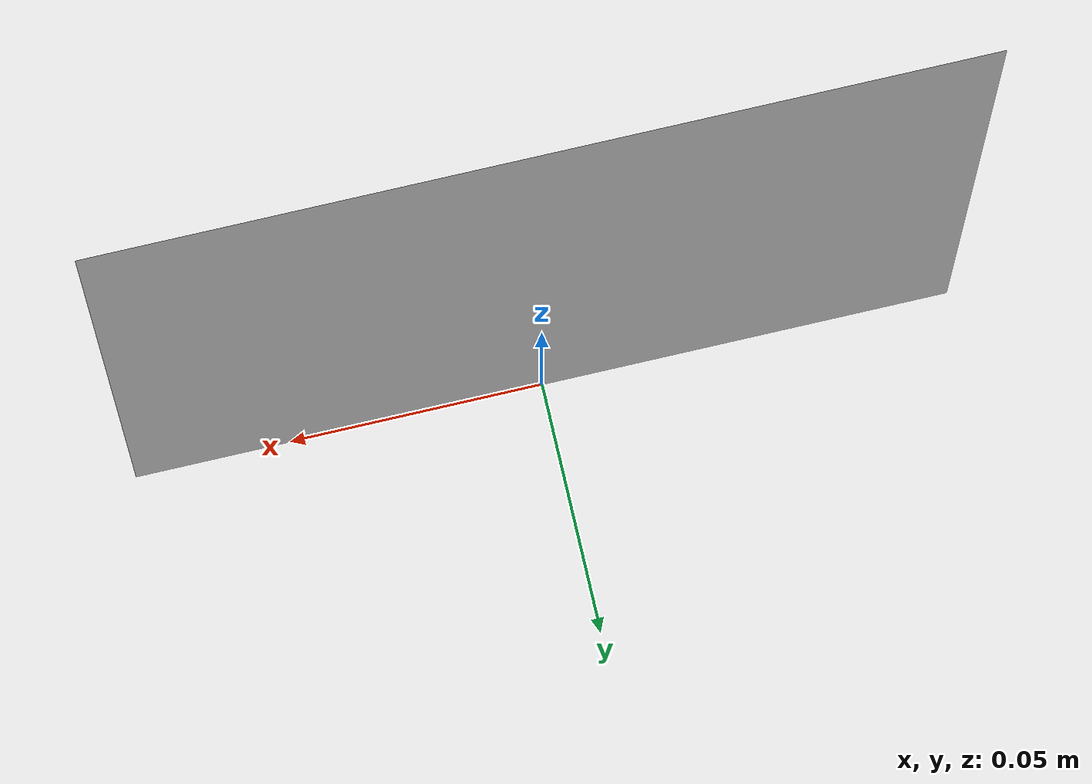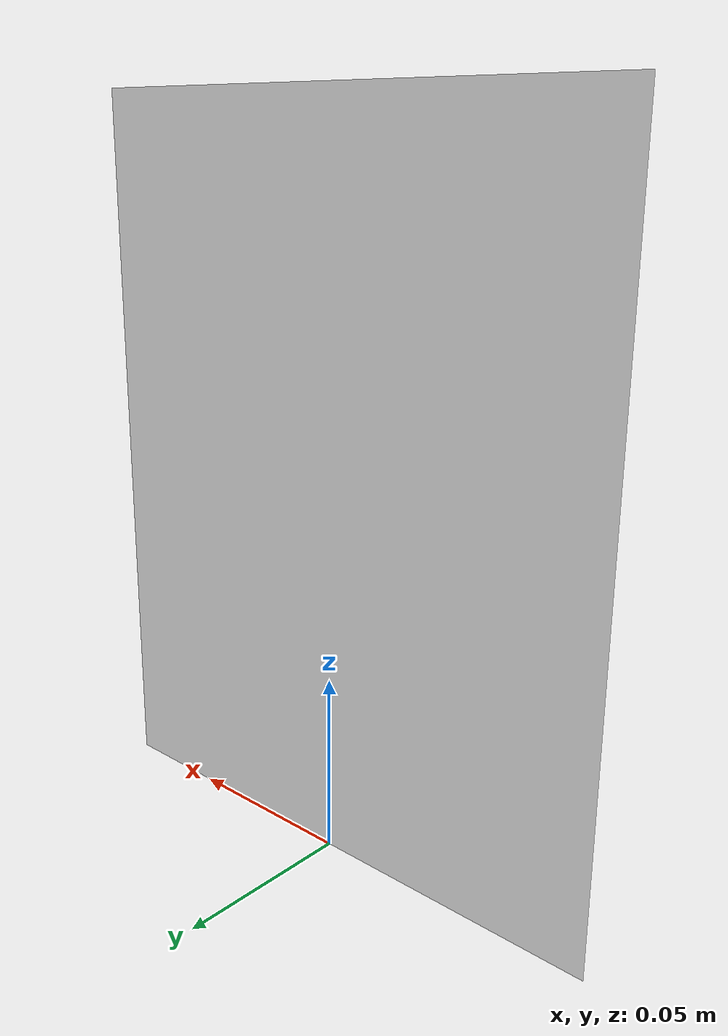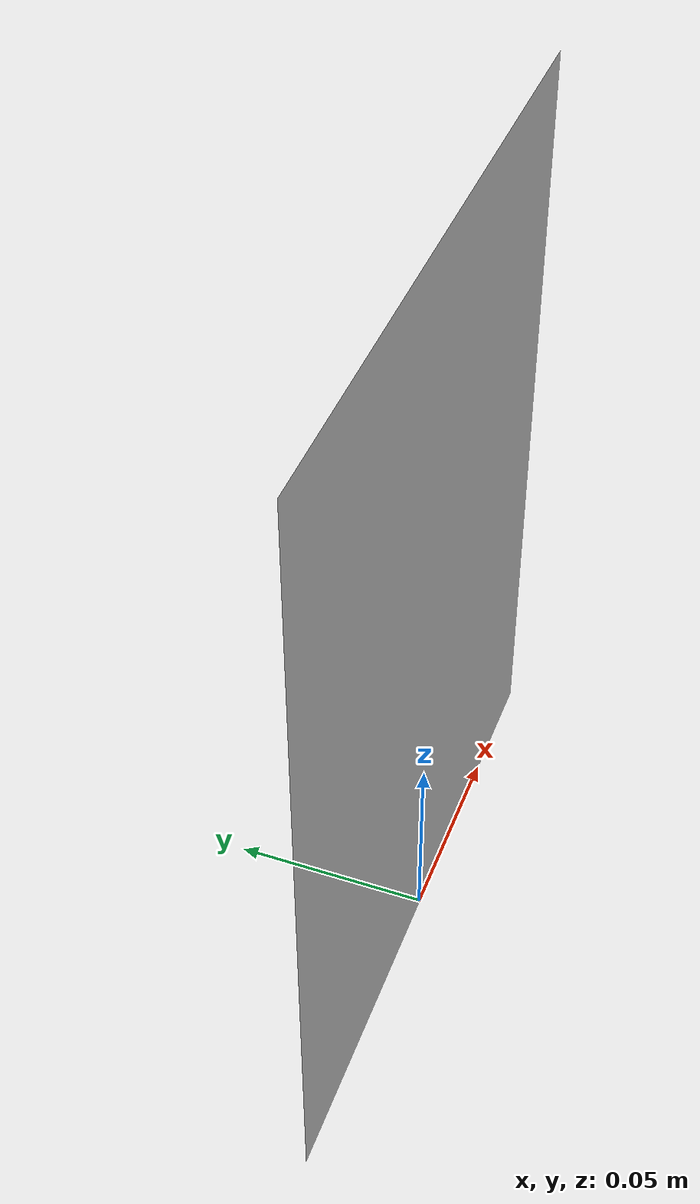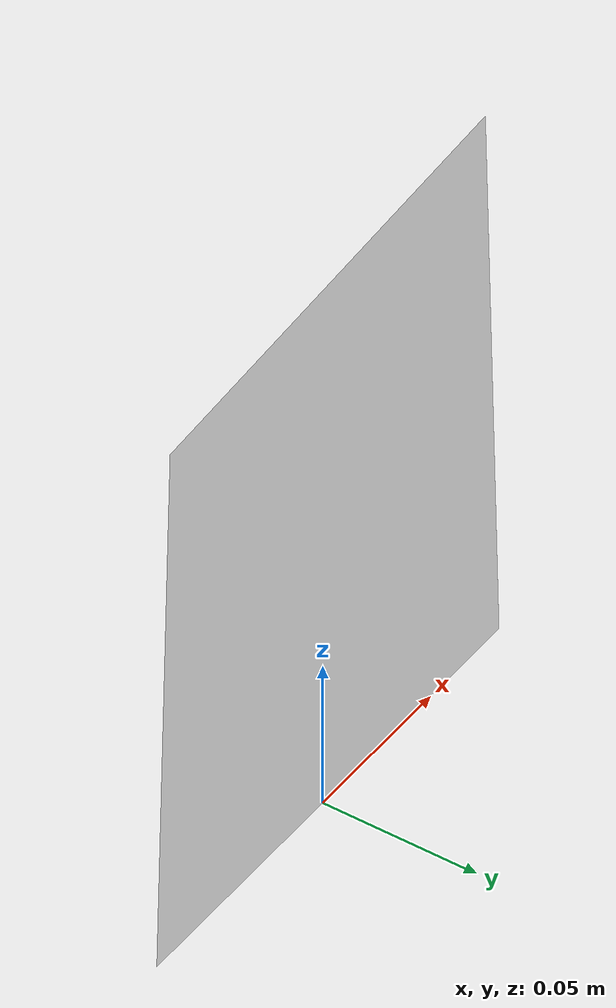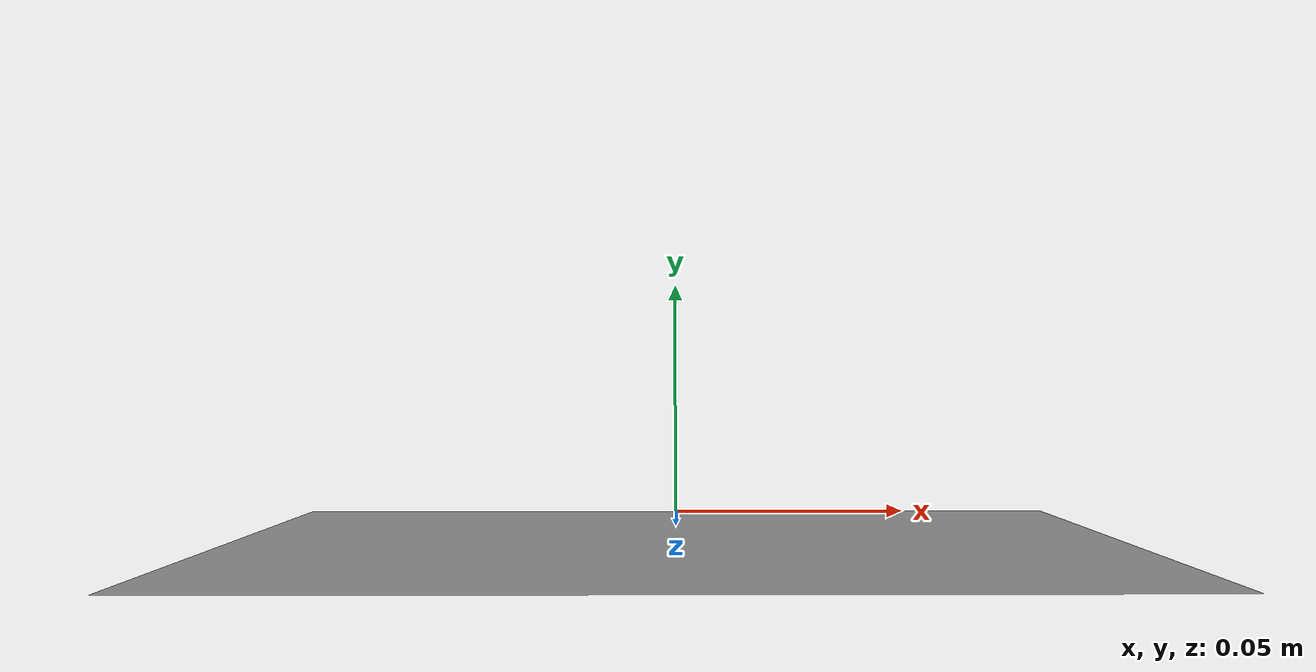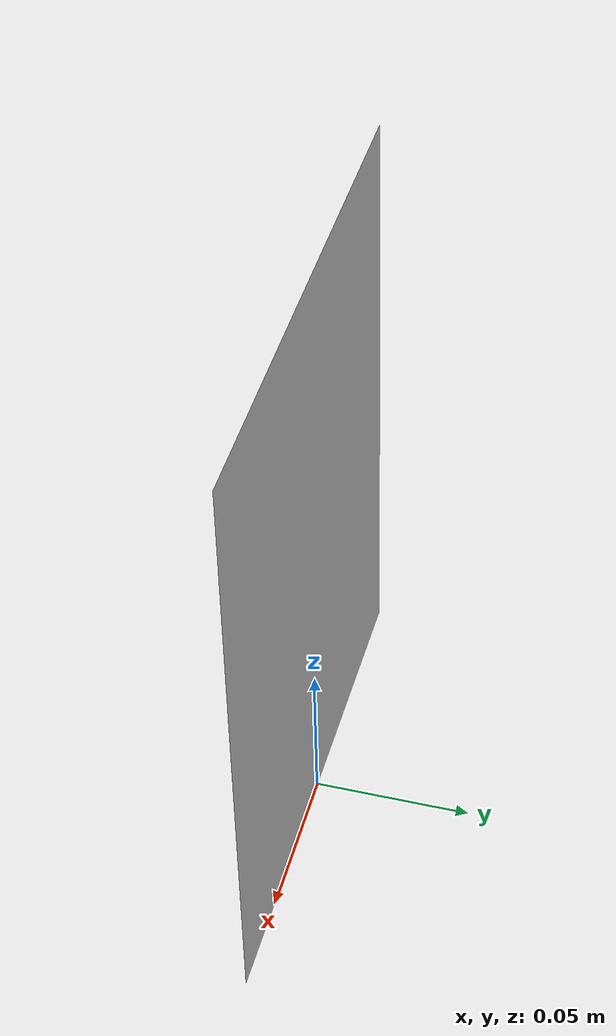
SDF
<?xml version='1.0' encoding='utf-8'?>
<sdf version="1.5"><model name="placard_fire"><static>true</static><link name="link"><visual name="visual"><geometry><mesh><uri>model://placard_fire/meshes/placard_fire.dae</uri></mesh></geometry><material><script><uri>model://placard_fire/materials/scripts</uri><uri>model://placard_fire/materials/textures</uri><name>PlacardFire</name></script></material></visual><collision name="collision"><geometry><box><size>0.1615 0.005 0.2</size></box></geometry><pose>0 0 0.1 0 0 0</pose></collision></link></model></sdf>
